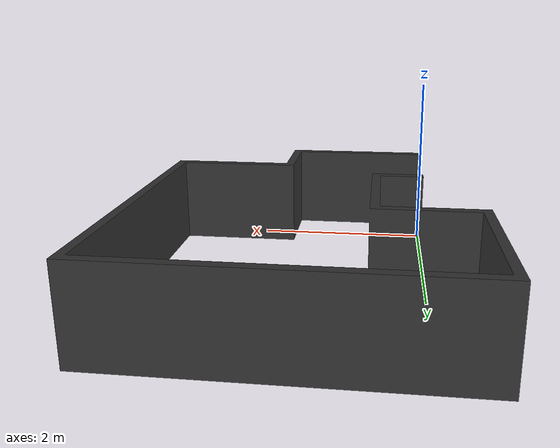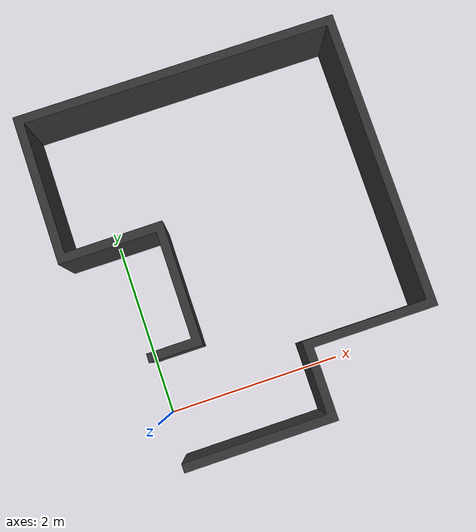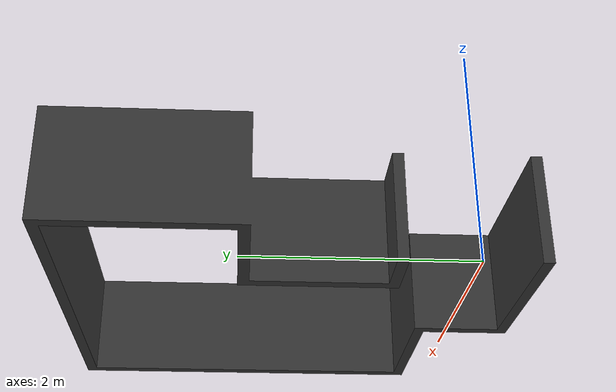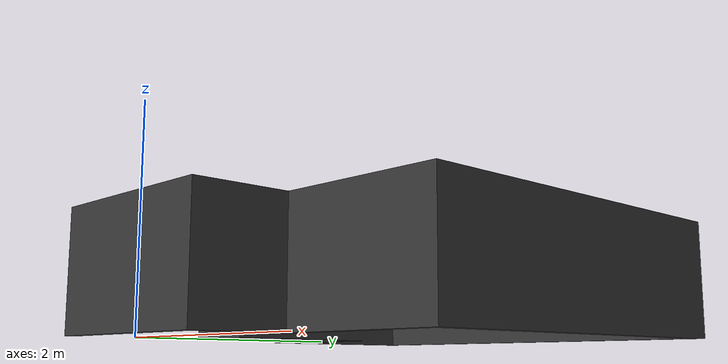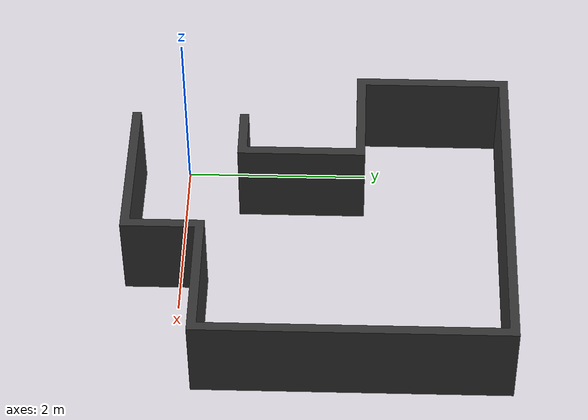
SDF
<?xml version="1.0" ?>
<sdf version="1.6">
  <model name="room">
    <static>true</static>
    <pose>0 0 0 0 0 -1.5708</pose>

    <link name="link">
      <visual name="visual">
        <geometry>
          <mesh>
            <uri>model://room/room.stl</uri>
          </mesh>
        </geometry>

        <material>
          <ambient>0.15 0.15 0.15 1</ambient>
          <diffuse>0.2 0.2 0.2 1</diffuse>
          <specular>0.05 0.05 0.05 1</specular>
        </material>
      </visual>
    </link>
  </model>
</sdf>
